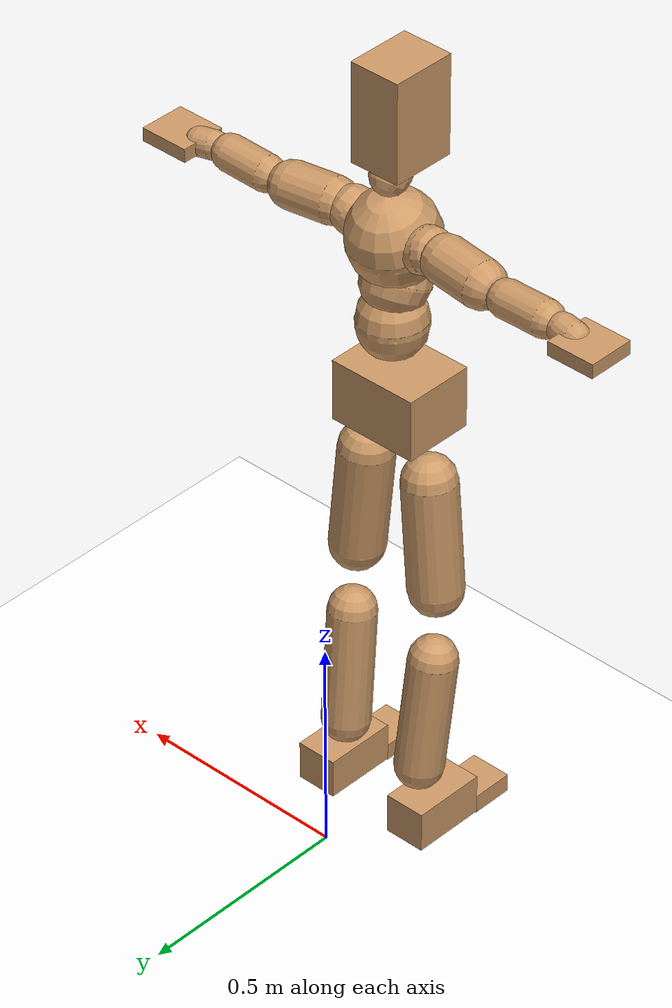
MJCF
<mujoco model="humanoid">
  <option integrator="implicitfast" />

  <visual>
    <global offwidth="1280" offheight="960" />
    <headlight active="1" ambient="0.34 0.34 0.34" diffuse="0.5 0.5 0.5" />
  </visual>

  <default>
    <joint damping="2" stiffness="2" armature="0.01" limited="true" solimplimit="0 .99 .01" />
    <geom condim="1" friction="0.7 0.005 0.0001" solimp=".99 .99 .003" solref="0.015 1" margin="0.001" rgba="0.8 0.6 .4 1" />
    <default class="smplcontact">
      <geom condim="3" friction="1. 0.005 0.0001" solref="0.015 1" solimp="0.98 0.98 0.001" priority="1" />
    </default>
    <default class="stiff_medium">
      <joint stiffness="10" />
    </default>
    <default class="stiff_medium_higher">
      <joint stiffness="50" />
    </default>
    <default class="stiff_high">
      <joint stiffness="100" />
    </default>
  </default>

  <asset>
    <texture type="skybox" builtin="gradient" rgb1="0.99 0.99 0.99" rgb2="0.608 0.828 0.892" width="100" />
    <texture builtin="flat" height="1278" mark="cross" markrgb="1 1 1" name="texgeom" random="0.01" rgb1="0.8 0.6 0.4" rgb2="0.8 0.6 0.4" type="cube" width="127" />
    <texture name="texplane" type="2d" builtin="checker" markrgb="1 1 1" rgb1="0.756 0.772 0.76" rgb2="0.6 0.6 0.6" width="100" height="100" />
    <material name="MatPlane" reflectance="0.5" texture="texplane" texrepeat="1 1" texuniform="true" />
    <material name="geom" texture="texgeom" texuniform="true" />
  </asset>

  <worldbody>
    <light name="tracking_light" pos="0 0 7" dir="0 0 -1" directional="true" cutoff="100" exponent="1" diffuse="1 1 1" specular="0.1 0.1 0.1" mode="trackcom" />
    <camera name="back" pos="0 3 2.4" xyaxes="-1 0 0 0 -1 2" mode="trackcom" />
    <camera name="side" pos="-3 0 2.4" xyaxes="0 -1 0 1 0 2" mode="trackcom" />
    <camera name="front_side" pos="-2.8 -2.8 0.8" xyaxes="0.5 -0.5 0 0.1 0.1 1" mode="trackcom" />
    <geom condim="3" name="floor" pos="0 0 0" rgba="1 1 1 1" size="100 100 .2" type="plane" material="MatPlane" />
    <body name="Pelvis" pos="-0.0018 -0.2233 1.05109" euler="90 0 0">
      <site name="Pelvis" size="0.01" />
      <freejoint name="Pelvis" />
      <geom type="box" pos="-0.0000 -0.0121 -0.0055" size="0.1069 0.0722 0.083" quat="1.0000 0.0000 0.0000 0.0000" density="3165.830099" name="Pelvis" />
      <body name="L_Hip" pos="0.0781875 -0.102825 -0.00765">
        <joint name="L_Hip_x" type="hinge" pos="0 0 0" axis="1 0 0" stiffness="12.190417346938776" range="-160.0 22.92" class="stiff_medium" damping="19.23943835853268" armature="0.013495335550763796"/>
        <joint name="L_Hip_y" type="hinge" pos="0 0 0" axis="0 1 0" stiffness="12.1624156122449" range="-70.0 70.0" class="stiff_medium" damping="12.01348525591105" armature="0.011866378571103061"/>
        <joint name="L_Hip_z" type="hinge" pos="0 0 0" axis="0 0 1" stiffness="12.164813061224491" range="-28.65 90.0" class="stiff_medium" damping="12.81394800146982" armature="0.013497721876857558"/>
        <geom type="capsule" density="2040.816327" fromto="0.0077625 -0.084375 -0.0010125 0.030825 -0.337725 -0.00405" size="0.0615" name="L_Hip" />
        <body name="L_Knee" pos="0.0385875 -0.4221 -0.0050625">
          <joint name="L_Knee_x" type="hinge" pos="0 0 0" axis="1 0 0" range="-5.16 171.89" damping="10.076823862713265" armature="0.013188848617403135" stiffness="2.4059714693877554"/>
          <joint name="L_Knee_y" type="hinge" pos="0 0 0" axis="0 1 0" range="-4.58 6.88" damping="9.48610001940017" armature="0.011596019506642572" stiffness="2.4250264693877552"/>
          <joint name="L_Knee_z" type="hinge" pos="0 0 0" axis="0 0 1" range="-6.88 4.58" damping="10.063496829521757" armature="0.013200099383969124" stiffness="2.3975664285714284"/>
          <geom type="capsule" density="1234.567901" fromto="-0.0030375 -0.08955 -0.0097875 -0.0122625 -0.3582 -0.039375" size="0.0541" name="L_Knee" />
          <body name="L_Ankle" pos="-0.0153 -0.44775 -0.0491625">
            <joint name="L_Ankle_x" type="hinge" pos="0 0 0" axis="1 0 0" range="-45.84 45.84" class="stiff_medium" damping="6.897532818423139" armature="0.011747130867095392" stiffness="11.250018673469388"/>
            <joint name="L_Ankle_y" type="hinge" pos="0 0 0" axis="0 1 0" range="-74.48 22.92" class="stiff_medium" damping="3.4392113884775433" armature="0.011682135831686723" stiffness="11.250011836734695"/>
            <joint name="L_Ankle_z" type="hinge" pos="0 0 0" axis="0 0 1" range="-4.58 4.58" class="stiff_medium" damping="6.751978545825464" armature="0.011256596119330211" stiffness="11.25"/>
            <geom type="box" pos="0.0262125 -0.0268875 0.027225" size="0.0483 0.0464 0.085" quat="1.0000 0.0000 0.0000 0.0000" density="449.071558" name="L_Ankle" class="smplcontact" />
            <body name="L_Toe" pos="0.0297 -0.062775 0.134213">
              <joint name="L_Toe_x" type="hinge" pos="0 0 0" axis="1 0 0" range="-91.67 22.92" armature="0.011009874139729963" damping="2.2258578936846987" stiffness="2.25"/>
              <joint name="L_Toe_y" type="hinge" pos="0 0 0" axis="0 1 0" range="-4.58 4.58" armature="0.010711537859158168" damping="2.195493574716441" stiffness="2.25"/>
              <joint name="L_Toe_z" type="hinge" pos="0 0 0" axis="0 0 1" range="-4.58 4.58" armature="0.010108317957717756" damping="2.132778254055726" stiffness="2.25"/>
              <geom type="box" pos="-0.003375 0.0061875 0.0279" size="0.0478 0.02 0.0496" quat="1.0000 0.0000 0.0000 0.0000" density="423.206892" name="L_Toe" class="smplcontact" />
            </body>
          </body>
        </body>
      </body>
      <body name="R_Hip" pos="-0.0761625 -0.101813 -0.0048375">
        <joint name="R_Hip_x" type="hinge" pos="0 0 0" axis="1 0 0" stiffness="12.190417346938776" range="-160.0 22.92" class="stiff_medium" damping="19.23943835853268" armature="0.013495335550763796"/>
        <joint name="R_Hip_y" type="hinge" pos="0 0 0" axis="0 1 0" stiffness="12.1624156122449" range="-70.0 70.0" class="stiff_medium" damping="12.01348525591105" armature="0.011866378571103061"/>
        <joint name="R_Hip_z" type="hinge" pos="0 0 0" axis="0 0 1" stiffness="12.164813061224491" range="-90.0 28.65" class="stiff_medium" damping="12.81394800146982" armature="0.013497721876857558"/>
        <geom type="capsule" density="2040.816327" fromto="-0.0086625 -0.0860625 -0.002025 -0.034425 -0.344362 -0.0079875" size="0.0606" name="R_Hip" />
        <body name="R_Knee" pos="-0.0430875 -0.430425 -0.0100125">
          <joint name="R_Knee_x" type="hinge" pos="0 0 0" axis="1 0 0" range="-5.16 171.89" damping="10.076823862713265" armature="0.013188848617403135" stiffness="2.4059714693877554"/>
          <joint name="R_Knee_y" type="hinge" pos="0 0 0" axis="0 1 0" range="-6.88 4.58" damping="9.48610001940017" armature="0.011596019506642572" stiffness="2.4250264693877552"/>
          <joint name="R_Knee_z" type="hinge" pos="0 0 0" axis="0 0 1" range="-4.58 6.88" damping="10.063496829521757" armature="0.013200099383969124" stiffness="2.3975664285714284"/>
          <geom type="capsule" density="1234.567901" fromto="0.0036 -0.0896625 -0.0095625 0.014175 -0.358537 -0.038025" size="0.0541" name="R_Knee" />
          <body name="R_Ankle" pos="0.017775 -0.4482 -0.0475875">
            <joint name="R_Ankle_x" type="hinge" pos="0 0 0" axis="1 0 0" range="-45.84 45.84" class="stiff_medium" damping="6.897532818423139" armature="0.011747130867095392" stiffness="11.250018673469388"/>
            <joint name="R_Ankle_y" type="hinge" pos="0 0 0" axis="0 1 0" range="-22.92 74.48" class="stiff_medium" damping="3.4392113884775433" armature="0.011682135831686723" stiffness="11.250011836734695"/>
            <joint name="R_Ankle_z" type="hinge" pos="0 0 0" axis="0 0 1" range="-4.58 4.58" class="stiff_medium" damping="6.751978545825464" armature="0.011256596119330211" stiffness="11.25"/>
            <geom type="box" pos="-0.02385 -0.019575 0.0288" size="0.0483 0.0478 0.0865" quat="1.0000 0.0000 0.0000 0.0000" density="434.700981" name="R_Ankle" class="smplcontact" />
            <body name="R_Toe" pos="-0.028575 -0.0541125 0.138713">
              <joint name="R_Toe_x" type="hinge" pos="0 0 0" axis="1 0 0" range="-91.67 22.92" armature="0.011009874139729963" damping="2.2258578936846987" stiffness="2.25"/>
              <joint name="R_Toe_y" type="hinge" pos="0 0 0" axis="0 1 0" range="-4.58 4.58" armature="0.010711537859158168" damping="2.195493574716441" stiffness="2.25"/>
              <joint name="R_Toe_z" type="hinge" pos="0 0 0" axis="0 0 1" range="-4.58 4.58" armature="0.010108317957717756" damping="2.132778254055726" stiffness="2.25"/>
              <geom type="box" pos="0.004725 0.0050625 0.0255375" size="0.0479 0.0216 0.0493" quat="1.0000 0.0000 0.0000 0.0000" density="407.384095" name="R_Toe" class="smplcontact" />
            </body>
          </body>
        </body>
      </body>
      <body name="Torso" pos="-0.0025 0.109 -0.0267">
        <joint name="Torso_x" type="hinge" pos="0 0 0" axis="1 0 0" range="-25.78 57.3" class="stiff_medium" damping="13.296564125699907" armature="0.008717287887859693" stiffness="9.01394612244898"/>
        <joint name="Torso_y" type="hinge" pos="0 0 0" axis="0 1 0" range="-57.3 57.3" class="stiff_high" damping="11.857975578739207" armature="0.0038447211811141577" stiffness="91.43158775510203"/>
        <joint name="Torso_z" type="hinge" pos="0 0 0" axis="0 0 1" range="-34.38 34.38" class="stiff_high" damping="16.193220219297853" armature="0.007045583299802339" stiffness="93.0442413043478"/>
        <geom type="capsule" density="2040.816327" fromto="0.0025 0.0608 0.0005 0.003 0.0743 0.0006" size="0.0769" name="Torso" />
        <body name="Spine" pos="0.0055 0.1352 0.0011">
          <joint name="Spine_x" type="hinge" pos="0 0 0" axis="1 0 0" stiffness="8.855082083333333" range="-25.78 57.3" class="stiff_medium" damping="13.07679767745398" armature="0.0085827744458704"/>
          <joint name="Spine_y" type="hinge" pos="0 0 0" axis="0 1 0" stiffness="8.966550425531915" range="-57.3 57.3" class="stiff_high" damping="4.670538649446806" armature="0.003801268715520681"/>
          <joint name="Spine_z" type="hinge" pos="0 0 0" axis="0 0 1" stiffness="17.399179999999998" range="-34.38 34.38" class="stiff_high" damping="8.612389288095052" armature="0.005920876830729188"/>
          <geom type="capsule" density="2040.816327" fromto="0.0007 0.0238 0.0114 0.0008 0.0291 0.014" size="0.0755" name="Spine" />
          <body name="Chest" pos="0.0015 0.0529 0.0254">
            <joint name="Chest_x" type="hinge" pos="0 0 0" axis="1 0 0" stiffness="8.445605217391304" range="-25.78 57.3" class="stiff_medium" damping="12.725283601187998" armature="0.008521609816255408"/>
            <joint name="Chest_y" type="hinge" pos="0 0 0" axis="0 1 0" stiffness="7.416513142857141" range="-57.3 57.3" class="stiff_high" damping="4.235867490218071" armature="0.003780114777548562"/>
            <joint name="Chest_z" type="hinge" pos="0 0 0" axis="0 0 1" stiffness="17.461715111111108" range="-34.38 34.38" class="stiff_high" damping="8.265316118618486" armature="0.005433748608980235"/>
            <geom type="capsule" density="2040.816327" fromto="-0.0009 0.0682 -0.0173 -0.001 0.0833 -0.0212" size="0.1002" name="Chest" />
            <body name="Neck" pos="-0.0028 0.2139 -0.0429">
              <joint name="Neck_x" type="hinge" pos="0 0 0" axis="1 0 0" range="-28.65 57.3" class="stiff_medium_higher" damping="10.000000000000004" armature="0.010000000000000009" stiffness="50.0"/>
              <joint name="Neck_y" type="hinge" pos="0 0 0" axis="0 1 0" range="-40.11 40.11" class="stiff_medium_higher" damping="10.0" armature="0.01" stiffness="50.0"/>
              <joint name="Neck_z" type="hinge" pos="0 0 0" axis="0 0 1" range="-40.11 40.11" class="stiff_medium_higher" damping="9.999999999999996" armature="0.009999999999999992" stiffness="50.0"/>
              <geom type="capsule" density="1000" fromto="0.001 0.013 0.0103 0.0041 0.052 0.0411" size="0.0436" name="Neck" />
              <body name="Head" pos="0.0052 0.065 0.0513">
                <joint name="Head_x" type="hinge" pos="0 0 0" axis="1 0 0" range="-28.65 57.3" class="stiff_medium_higher" damping="1.9999999999999978" armature="0.009999999999999978" stiffness="50.0"/>
                <joint name="Head_y" type="hinge" pos="0 0 0" axis="0 1 0" range="-40.11 40.11" class="stiff_medium_higher" damping="1.9999999999999998" armature="0.009999999999999998" stiffness="50.0"/>
                <joint name="Head_z" type="hinge" pos="0 0 0" axis="0 0 1" range="-40.11 40.11" class="stiff_medium_higher" damping="1.9999999999999944" armature="0.009999999999999945" stiffness="50.0"/>
                <geom type="box" pos="-0.0042 0.0876 -0.0116" size="0.0606 0.1154 0.076" quat="1.0000 0.0000 0.0000 0.0000" density="1018.069894" name="Head" />
                <geom type="capsule" name="nose" size="0.02 0.01" pos="0 0.07 0.05" quat="1 0 0 0" mass="0" contype="0" conaffinity="0" />
              </body>
            </body>
            <body name="L_Thorax" pos="0.052205 0.0806262 -0.0225912">
              <joint name="L_Thorax_x" type="hinge" pos="0 0 0" axis="1 0 0" range="-10.89 4.58" class="stiff_medium_higher" damping="10.752161019344744" armature="0.005492534491244063" stiffness="26.310478061224497"/>
              <joint name="L_Thorax_y" type="hinge" pos="0 0 0" axis="0 1 0" range="-28.65 17.19" class="stiff_medium_higher" damping="8.656507675839674" armature="0.0035990909186137967" stiffness="26.025712755102038"/>
              <joint name="L_Thorax_z" type="hinge" pos="0 0 0" axis="0 0 1" range="-31.51 40.11" class="stiff_medium_higher" damping="8.654936190408646" armature="0.0035973494554525564" stiffness="26.02885867346939"/>
              <geom type="capsule" density="1000" fromto="0.0120575 0.00404125 -0.0011925 0.04823 0.016165 -0.00470375" size="0.0521" name="L_Thorax" />
              <body name="L_Shoulder" pos="0.0602875 0.0202062 -0.00589625">
                <joint name="L_Shoulder_x" type="hinge" pos="0 0 0" axis="1 0 0" range="-97.4 97.4" class="stiff_medium" damping="3.435570611371455" armature="0.00618147417805879" stiffness="5.3039961224489796"/>
                <joint name="L_Shoulder_y" type="hinge" pos="0 0 0" axis="0 1 0" range="-108.86 80.21" class="stiff_medium" damping="2.6194672785690365" armature="0.003646930251057189" stiffness="5.226319999999999"/>
                <joint name="L_Shoulder_z" type="hinge" pos="0 0 0" axis="0 0 1" range="-97.4 85.94" class="stiff_medium" damping="2.619734916927622" armature="0.0036444798930498424" stiffness="5.230902653061225"/>
                <geom type="capsule" density="1000" fromto="0.0343837 -0.0017225 -0.00364375 0.137601 -0.0067575 -0.014575" size="0.0517" name="L_Shoulder" />
                <body name="L_Elbow" pos="0.171985 -0.00848 -0.0182187">
                  <joint name="L_Elbow_x" type="hinge" pos="0 0 0" axis="1 0 0" range="-17.19 4.58" damping="3.178557774354656" armature="0.007393662378868602" stiffness="1.0931772653061227"/>
                  <joint name="L_Elbow_y" type="hinge" pos="0 0 0" axis="0 1 0" range="-180.0 17.19" damping="2.3033030607353284" armature="0.003885042260915374" stiffness="1.0924370204081633"/>
                  <joint name="L_Elbow_z" type="hinge" pos="0 0 0" axis="0 0 1" range="-100.84 4.58" damping="2.3008114328593727" armature="0.0038721783452337188" stiffness="1.0936961632653062"/>
                  <geom type="capsule" density="1000" fromto="0.0329925 0.0011925 -0.0001325 0.132102 0.00477 -0.00059625" size="0.0405" name="L_Elbow" />
                  <body name="L_Wrist" pos="0.165095 0.0059625 -0.000795">
                    <joint name="L_Wrist_x" type="hinge" pos="0 0 0" axis="1 0 0" range="-180.0 22.92" armature="0.008001427855743062" damping="1.4109622696559905" stiffness="1.2440370408163264"/>
                    <joint name="L_Wrist_y" type="hinge" pos="0 0 0" axis="0 1 0" range="-17.19 17.19" armature="0.004879471429003486" damping="1.0965644446974538" stiffness="1.2321555714285712"/>
                    <joint name="L_Wrist_z" type="hinge" pos="0 0 0" axis="0 0 1" range="-22.92 22.92" armature="0.004698864868438899" damping="1.0781698402208952" stiffness="1.2369478979591837"/>
                    <geom type="capsule" density="1000" fromto="0.01113 -0.00106 -0.0019875 0.04452 -0.00430625 -0.00795" size="0.0318" name="L_Wrist" class="smplcontact" />
                    <body name="L_Hand" pos="0.05565 -0.0054325 -0.00987125">
                      <joint name="L_Hand_x" type="hinge" pos="0 0 0" axis="1 0 0" range="-17.19 17.19" armature="0.009755552996204358" damping="1.6078618449168156" stiffness="1.3249990612244895"/>
                      <joint name="L_Hand_y" type="hinge" pos="0 0 0" axis="0 1 0" range="-51.57 51.57" armature="0.00704374716628599" damping="1.3662326477640367" stiffness="1.3249990408163264"/>
                      <joint name="L_Hand_z" type="hinge" pos="0 0 0" axis="0 0 1" range="-91.67 91.67" armature="0.006320878329522859" damping="1.2942300773617847" stiffness="1.3249989999999998"/>
                      <geom type="box" pos="0.0326612 0.0006625 -0.0038425" size="0.0585 0.0158 0.0538" quat="1.0000 0.0000 0.0000 0.0000" density="400.552564" name="L_Hand" class="smplcontact" />
                    </body>
                  </body>
                </body>
              </body>
            </body>
            <body name="R_Thorax" pos="-0.0541925 0.078705 -0.0255725">
              <joint name="R_Thorax_x" type="hinge" pos="0 0 0" axis="1 0 0" range="-10.89 4.58" class="stiff_medium_higher" damping="10.752161019344744" armature="0.005492534491244063" stiffness="26.310478061224497"/>
              <joint name="R_Thorax_y" type="hinge" pos="0 0 0" axis="0 1 0" range="-17.19 28.65" class="stiff_medium_higher" damping="8.656507675839674" armature="0.0035990909186137967" stiffness="26.025712755102038"/>
              <joint name="R_Thorax_z" type="hinge" pos="0 0 0" axis="0 0 1" range="-40.11 31.51" class="stiff_medium_higher" damping="8.654936190408646" armature="0.0035973494554525564" stiffness="26.02885867346939"/>
              <geom type="capsule" density="1000" fromto="-0.01272 0.00430625 -0.0011925 -0.05088 0.017225 -0.00483625" size="0.0511" name="R_Thorax" />
              <body name="R_Shoulder" pos="-0.0636 0.0215975 -0.00602875">
                <joint name="R_Shoulder_x" type="hinge" pos="0 0 0" axis="1 0 0" range="-97.4 97.4" class="stiff_medium" damping="3.435570611371455" armature="0.00618147417805879" stiffness="5.3039961224489796"/>
                <joint name="R_Shoulder_y" type="hinge" pos="0 0 0" axis="0 1 0" range="-80.21 108.86" class="stiff_medium" damping="2.6194672785690365" armature="0.003646930251057189" stiffness="5.226319999999999"/>
                <joint name="R_Shoulder_z" type="hinge" pos="0 0 0" axis="0 0 1" range="-85.94 97.4" class="stiff_medium" damping="2.619734916927622" armature="0.0036444798930498424" stiffness="5.230902653061225"/>
                <geom type="capsule" density="1000" fromto="-0.0335888 -0.00178875 -0.00284875 -0.134488 -0.00708875 -0.0113288" size="0.0531" name="R_Shoulder" />
                <body name="R_Elbow" pos="-0.168076 -0.00881125 -0.0141775">
                  <joint name="R_Elbow_x" type="hinge" pos="0 0 0" axis="1 0 0" range="-17.19 4.58" damping="3.178557774354656" armature="0.007393662378868602" stiffness="1.0931772653061227"/>
                  <joint name="R_Elbow_y" type="hinge" pos="0 0 0" axis="0 1 0" range="-17.19 180.0" damping="2.3033030607353284" armature="0.003885042260915374" stiffness="1.0924370204081633"/>
                  <joint name="R_Elbow_z" type="hinge" pos="0 0 0" axis="0 0 1" range="-4.58 100.84" damping="2.3008114328593727" armature="0.0038721783452337188" stiffness="1.0936961632653062"/>
                  <geom type="capsule" density="1000" fromto="-0.0338538 0.00106 -0.00072875 -0.135282 0.0041075 -0.002915" size="0.0408" name="R_Elbow" />
                  <body name="R_Wrist" pos="-0.169136 0.0051675 -0.00371">
                    <joint name="R_Wrist_x" type="hinge" pos="0 0 0" axis="1 0 0" range="-180.0 22.92" armature="0.008001427855743062" damping="1.4109622696559905" stiffness="1.2440370408163264"/>
                    <joint name="R_Wrist_y" type="hinge" pos="0 0 0" axis="0 1 0" range="-17.19 17.19" armature="0.004879471429003486" damping="1.0965644446974538" stiffness="1.2321555714285712"/>
                    <joint name="R_Wrist_z" type="hinge" pos="0 0 0" axis="0 0 1" range="-22.92 22.92" armature="0.004698864868438899" damping="1.0781698402208952" stiffness="1.2369478979591837"/>
                    <geom type="capsule" density="1000" fromto="-0.0111962 -0.000795 -0.00139125 -0.0448512 -0.00324625 -0.00549875" size="0.0326" name="R_Wrist" class="smplcontact" />
                    <body name="R_Hand" pos="-0.0560475 -0.00404125 -0.00682375">
                      <joint name="R_Hand_x" type="hinge" pos="0 0 0" axis="1 0 0" range="-17.19 17.19" armature="0.009755552996204358" damping="1.6078618449168156" stiffness="1.3249990612244895"/>
                      <joint name="R_Hand_y" type="hinge" pos="0 0 0" axis="0 1 0" range="-51.57 51.57" armature="0.00704374716628599" damping="1.3662326477640367" stiffness="1.3249990408163264"/>
                      <joint name="R_Hand_z" type="hinge" pos="0 0 0" axis="0 0 1" range="-91.67 91.67" armature="0.006320878329522859" damping="1.2942300773617847" stiffness="1.3249989999999998"/>
                      <geom type="box" pos="-0.0306075 -0.00059625 -0.00523375" size="0.0569 0.0164 0.0546" quat="1.0000 0.0000 0.0000 0.0000" density="403.679611" name="R_Hand" class="smplcontact" />
                    </body>
                  </body>
                </body>
              </body>
            </body>
          </body>
        </body>
      </body>
    </body>
  </worldbody>
  <actuator>
    <general name="L_Hip_x" joint="L_Hip_x" biastype="affine" gainprm="350.267339766903" biasprm="-262.4898695344799 -219.42751224489797 -2.5652584478043576" ctrllimited="true" ctrlrange="-1 1" forcerange="-438.85502448979594 438.85502448979594" />
    <general name="L_Hip_y" joint="L_Hip_y" biastype="affine" gainprm="267.4654887613407" biasprm="0.0 -218.9234810204082 -2.40269705118221" ctrllimited="true" ctrlrange="-1 1" forcerange="-437.8469620408164 437.8469620408164" />
    <general name="L_Hip_z" joint="L_Hip_z" biastype="affine" gainprm="226.72168417679922" biasprm="117.23030193212499 -218.96663510204084 -2.562789600293964" ctrllimited="true" ctrlrange="-1 1" forcerange="-437.9332702040817 437.9332702040817" />
    <general name="L_Knee_x" joint="L_Knee_x" biastype="affine" gainprm="334.5617487428154" biasprm="315.0606064269393 -216.53743224489799 -2.5192059656783163" ctrllimited="true" ctrlrange="-1 1" forcerange="-433.07486448979597 433.07486448979597" />
    <general name="L_Knee_y" joint="L_Knee_y" biastype="affine" gainprm="21.82684590193453" biasprm="4.380606071068885 -218.25238224489797 -2.3715250048500427" ctrllimited="true" ctrlrange="-1 1" forcerange="-436.50476448979595 436.50476448979595" />
    <general name="L_Knee_z" joint="L_Knee_z" biastype="affine" gainprm="21.579687329883924" biasprm="-4.331001820133772 -215.78097857142856 -2.515874207380439" ctrllimited="true" ctrlrange="-1 1" forcerange="-431.5619571428571 431.5619571428571" />
    <general name="L_Ankle_x" joint="L_Ankle_x" biastype="affine" gainprm="81.00610103169612" biasprm="0.0 -101.2501680612245 -2.2991776061410465" ctrllimited="true" ctrlrange="-1 1" forcerange="-202.500336122449 202.500336122449" />
    <general name="L_Ankle_y" joint="L_Ankle_y" biastype="affine" gainprm="86.06009430266938" biasprm="-45.557068400879196 -101.25010653061226 -2.292807592318362" ctrllimited="true" ctrlrange="-1 1" forcerange="-202.5002130612245 202.5002130612245" />
    <general name="L_Ankle_z" joint="L_Ankle_z" biastype="affine" gainprm="8.093528073810704" biasprm="0.0 -101.25 -2.2506595152751547" ctrllimited="true" ctrlrange="-1 1" forcerange="-202.5 202.5" />
    <general name="L_Toe_x" joint="L_Toe_x" biastype="affine" gainprm="80.99889798934223" biasprm="-48.59651136021711 -81.0 -0.8903431574738795" ctrllimited="true" ctrlrange="-1 1" forcerange="-162.0 162.0" />
    <general name="L_Toe_y" joint="L_Toe_y" biastype="affine" gainprm="6.474822459048563" biasprm="0.0 -81.0 -0.8781974298865765" ctrllimited="true" ctrlrange="-1 1" forcerange="-162.0 162.0" />
    <general name="L_Toe_z" joint="L_Toe_z" biastype="affine" gainprm="6.474822459048563" biasprm="0.0 -81.0 -0.8531113016222904" ctrllimited="true" ctrlrange="-1 1" forcerange="-162.0 162.0" />
    <general name="R_Hip_x" joint="R_Hip_x" biastype="affine" gainprm="350.267339766903" biasprm="-262.4898695344799 -219.42751224489797 -2.5652584478043576" ctrllimited="true" ctrlrange="-1 1" forcerange="-438.85502448979594 438.85502448979594" />
    <general name="R_Hip_y" joint="R_Hip_y" biastype="affine" gainprm="267.4654887613407" biasprm="0.0 -218.9234810204082 -2.40269705118221" ctrllimited="true" ctrlrange="-1 1" forcerange="-437.8469620408164 437.8469620408164" />
    <general name="R_Hip_z" joint="R_Hip_z" biastype="affine" gainprm="226.72168417679922" biasprm="-117.23030193212499 -218.96663510204084 -2.562789600293964" ctrllimited="true" ctrlrange="-1 1" forcerange="-437.9332702040817 437.9332702040817" />
    <general name="R_Knee_x" joint="R_Knee_x" biastype="affine" gainprm="334.5617487428154" biasprm="315.0606064269393 -216.53743224489799 -2.5192059656783163" ctrllimited="true" ctrlrange="-1 1" forcerange="-433.07486448979597 433.07486448979597" />
    <general name="R_Knee_y" joint="R_Knee_y" biastype="affine" gainprm="21.82684590193453" biasprm="-4.380606071068885 -218.25238224489797 -2.3715250048500427" ctrllimited="true" ctrlrange="-1 1" forcerange="-436.50476448979595 436.50476448979595" />
    <general name="R_Knee_z" joint="R_Knee_z" biastype="affine" gainprm="21.579687329883924" biasprm="4.331001820133772 -215.78097857142856 -2.515874207380439" ctrllimited="true" ctrlrange="-1 1" forcerange="-431.5619571428571 431.5619571428571" />
    <general name="R_Ankle_x" joint="R_Ankle_x" biastype="affine" gainprm="81.00610103169612" biasprm="0.0 -101.2501680612245 -2.2991776061410465" ctrllimited="true" ctrlrange="-1 1" forcerange="-202.500336122449 202.500336122449" />
    <general name="R_Ankle_y" joint="R_Ankle_y" biastype="affine" gainprm="86.06009430266938" biasprm="45.557068400879196 -101.25010653061226 -2.292807592318362" ctrllimited="true" ctrlrange="-1 1" forcerange="-202.5002130612245 202.5002130612245" />
    <general name="R_Ankle_z" joint="R_Ankle_z" biastype="affine" gainprm="8.093528073810704" biasprm="0.0 -101.25 -2.2506595152751547" ctrllimited="true" ctrlrange="-1 1" forcerange="-202.5 202.5" />
    <general name="R_Toe_x" joint="R_Toe_x" biastype="affine" gainprm="80.99889798934223" biasprm="-48.59651136021711 -81.0 -0.8903431574738795" ctrllimited="true" ctrlrange="-1 1" forcerange="-162.0 162.0" />
    <general name="R_Toe_y" joint="R_Toe_y" biastype="affine" gainprm="6.474822459048563" biasprm="0.0 -81.0 -0.8781974298865765" ctrllimited="true" ctrlrange="-1 1" forcerange="-162.0 162.0" />
    <general name="R_Toe_z" joint="R_Toe_z" biastype="affine" gainprm="6.474822459048563" biasprm="0.0 -81.0 -0.8531113016222904" ctrllimited="true" ctrlrange="-1 1" forcerange="-162.0 162.0" />
    <general name="Torso_x" joint="Torso_x" biastype="affine" gainprm="156.84477639727098" biasprm="59.505866057318 -216.33470693877553 -3.5457504335199754" ctrllimited="true" ctrlrange="-1 1" forcerange="-324.5020604081633 324.5020604081633" />
    <general name="Torso_y" joint="Torso_y" biastype="affine" gainprm="219.45197455967397" biasprm="0.0 -219.43581061224486 -2.3715951157478417" ctrllimited="true" ctrlrange="-1 1" forcerange="-329.1537159183673 329.1537159183673" />
    <general name="Torso_z" joint="Torso_z" biastype="affine" gainprm="133.99357690475964" biasprm="0.0 -223.30617913043474 -3.2386440438595705" ctrllimited="true" ctrlrange="-1 1" forcerange="-334.9592686956521 334.9592686956521" />
    <general name="Spine_x" joint="Spine_x" biastype="affine" gainprm="154.08050486134445" biasprm="58.457119802955894 -212.52197 -3.4871460473210614" ctrllimited="true" ctrlrange="-1 1" forcerange="-318.782955 318.782955" />
    <general name="Spine_y" joint="Spine_y" biastype="affine" gainprm="215.21306193898633" biasprm="0.0 -215.19721021276595 -2.335269324723403" ctrllimited="true" ctrlrange="-1 1" forcerange="-322.7958153191489 322.7958153191489" />
    <general name="Spine_z" joint="Spine_z" biastype="affine" gainprm="125.28332386438697" biasprm="0.0 -208.79016 -2.870796429365017" ctrllimited="true" ctrlrange="-1 1" forcerange="-313.18523999999996 313.18523999999996" />
    <general name="Chest_x" joint="Chest_x" biastype="affine" gainprm="146.95551136725376" biasprm="55.753944611168 -202.69452521739132 -3.3934089603167994" ctrllimited="true" ctrlrange="-1 1" forcerange="-304.04178782608693 304.04178782608693" />
    <general name="Chest_y" joint="Chest_y" biastype="affine" gainprm="178.00942688507038" biasprm="0.0 -177.9963154285714 -2.1179337451090356" ctrllimited="true" ctrlrange="-1 1" forcerange="-266.9944731428571 266.9944731428571" />
    <general name="Chest_z" joint="Chest_z" biastype="affine" gainprm="125.7336098306353" biasprm="0.0 -209.5405813333333 -2.755105372872829" ctrllimited="true" ctrlrange="-1 1" forcerange="-314.31087199999996 314.31087199999996" />
    <general name="Neck_x" joint="Neck_x" biastype="affine" gainprm="27.00198885760427" biasprm="9.000662952534757 -36.0 -0.8000000000000004" ctrllimited="true" ctrlrange="-1 1" forcerange="-72.0 72.0" />
    <general name="Neck_y" joint="Neck_y" biastype="affine" gainprm="25.20185626709732" biasprm="0.0 -36.0 -0.8" ctrllimited="true" ctrlrange="-1 1" forcerange="-72.0 72.0" />
    <general name="Neck_z" joint="Neck_z" biastype="affine" gainprm="25.20185626709732" biasprm="0.0 -36.0 -0.7999999999999997" ctrllimited="true" ctrlrange="-1 1" forcerange="-72.0 72.0" />
    <general name="Head_x" joint="Head_x" biastype="affine" gainprm="18.001325905069514" biasprm="6.000441968356505 -24.0 -0.7999999999999992" ctrllimited="true" ctrlrange="-1 1" forcerange="-48.0 48.0" />
    <general name="Head_y" joint="Head_y" biastype="affine" gainprm="16.801237511398213" biasprm="0.0 -24.0 -0.7999999999999999" ctrllimited="true" ctrlrange="-1 1" forcerange="-48.0 48.0" />
    <general name="Head_z" joint="Head_z" biastype="affine" gainprm="16.801237511398213" biasprm="0.0 -24.0 -0.7999999999999978" ctrllimited="true" ctrlrange="-1 1" forcerange="-48.0 48.0" />
    <general name="L_Thorax_x" joint="L_Thorax_x" biastype="affine" gainprm="8.524671780005175" biasprm="-3.4770962464015946 -63.14514734693879 -0.8601728815475795" ctrllimited="true" ctrlrange="-1 1" forcerange="-126.29029469387758 126.29029469387758" />
    <general name="L_Thorax_y" joint="L_Thorax_y" biastype="affine" gainprm="24.98652465153687" biasprm="-6.246631162884218 -62.461710612244886 -0.692520614067174" ctrllimited="true" ctrlrange="-1 1" forcerange="-124.92342122448977 124.92342122448977" />
    <general name="L_Thorax_z" joint="L_Thorax_z" biastype="affine" gainprm="39.04343825747016" biasprm="4.688265414887508 -62.46926081632654 -0.6923948952326917" ctrllimited="true" ctrlrange="-1 1" forcerange="-124.93852163265308 124.93852163265308" />
    <general name="L_Shoulder_x" joint="L_Shoulder_x" biastype="affine" gainprm="43.279353003673734" biasprm="0.0 -25.459181387755102 -0.9161521630323881" ctrllimited="true" ctrlrange="-1 1" forcerange="-50.918362775510204 50.918362775510204" />
    <general name="L_Shoulder_y" joint="L_Shoulder_y" biastype="affine" gainprm="41.39112503423586" biasprm="-6.272045973612193 -25.086336 -0.6985246076184097" ctrllimited="true" ctrlrange="-1 1" forcerange="-50.172672 50.172672" />
    <general name="L_Shoulder_z" joint="L_Shoulder_z" biastype="affine" gainprm="40.171909368365355" biasprm="-2.511018224945282 -25.108332734693878 -0.6985959778473659" ctrllimited="true" ctrlrange="-1 1" forcerange="-50.216665469387756 50.216665469387756" />
    <general name="L_Elbow_x" joint="L_Elbow_x" biastype="affine" gainprm="7.476509558353197" biasprm="-4.330674576519699 -39.35438155102042 -0.508569243896745" ctrllimited="true" ctrlrange="-1 1" forcerange="-78.70876310204083 78.70876310204083" />
    <general name="L_Elbow_y" joint="L_Elbow_y" biastype="affine" gainprm="67.67545257136767" biasprm="-55.87626367028943 -39.327732734693875 -0.36852848971765256" ctrllimited="true" ctrlrange="-1 1" forcerange="-78.65546546938775 78.65546546938775" />
    <general name="L_Elbow_z" joint="L_Elbow_z" biastype="affine" gainprm="36.22176204255759" biasprm="-33.07443382865295 -39.373061877551024 -0.3681298292574997" ctrllimited="true" ctrlrange="-1 1" forcerange="-78.74612375510205 78.74612375510205" />
    <general name="L_Wrist_x" joint="L_Wrist_x" biastype="affine" gainprm="13.217727298647333" biasprm="-10.231818470685607 -7.464222244897958 -0.5643849078623963" ctrllimited="true" ctrlrange="-1 1" forcerange="-14.928444489795917 14.928444489795917" />
    <general name="L_Wrist_y" joint="L_Wrist_y" biastype="affine" gainprm="2.2180434007032876" biasprm="0.0 -7.392933428571427 -0.43862577787898155" ctrllimited="true" ctrlrange="-1 1" forcerange="-14.785866857142855 14.785866857142855" />
    <general name="L_Wrist_z" joint="L_Wrist_z" biastype="affine" gainprm="2.9688936318338586" biasprm="0.0 -7.421687387755102 -0.4312679360883581" ctrllimited="true" ctrlrange="-1 1" forcerange="-14.843374775510204 14.843374775510204" />
    <general name="L_Hand_x" joint="L_Hand_x" biastype="affine" gainprm="2.38517399250132" biasprm="0.0 -7.949994367346937 -0.6431447379667263" ctrllimited="true" ctrlrange="-1 1" forcerange="-15.899988734693874 15.899988734693874" />
    <general name="L_Hand_y" joint="L_Hand_y" biastype="affine" gainprm="7.155521867291758" biasprm="0.0 -7.949994244897958 -0.5464930591056147" ctrllimited="true" ctrlrange="-1 1" forcerange="-15.899988489795916 15.899988489795916" />
    <general name="L_Hand_z" joint="L_Hand_z" biastype="affine" gainprm="12.7195398365005" biasprm="0.0 -7.9499939999999985 -0.5176920309447139" ctrllimited="true" ctrlrange="-1 1" forcerange="-15.899987999999997 15.899987999999997" />
    <general name="R_Thorax_x" joint="R_Thorax_x" biastype="affine" gainprm="8.524671780005175" biasprm="-3.4770962464015946 -63.14514734693879 -0.8601728815475795" ctrllimited="true" ctrlrange="-1 1" forcerange="-126.29029469387758 126.29029469387758" />
    <general name="R_Thorax_y" joint="R_Thorax_y" biastype="affine" gainprm="24.98652465153687" biasprm="6.246631162884214 -62.461710612244886 -0.692520614067174" ctrllimited="true" ctrlrange="-1 1" forcerange="-124.92342122448977 124.92342122448977" />
    <general name="R_Thorax_z" joint="R_Thorax_z" biastype="affine" gainprm="39.04343825747016" biasprm="-4.688265414887508 -62.46926081632654 -0.6923948952326917" ctrllimited="true" ctrlrange="-1 1" forcerange="-124.93852163265308 124.93852163265308" />
    <general name="R_Shoulder_x" joint="R_Shoulder_x" biastype="affine" gainprm="43.279353003673734" biasprm="0.0 -25.459181387755102 -0.9161521630323881" ctrllimited="true" ctrlrange="-1 1" forcerange="-50.918362775510204 50.918362775510204" />
    <general name="R_Shoulder_y" joint="R_Shoulder_y" biastype="affine" gainprm="41.39112503423586" biasprm="6.272045973612193 -25.086336 -0.6985246076184097" ctrllimited="true" ctrlrange="-1 1" forcerange="-50.172672 50.172672" />
    <general name="R_Shoulder_z" joint="R_Shoulder_z" biastype="affine" gainprm="40.171909368365355" biasprm="2.5110182249452766 -25.108332734693878 -0.6985959778473659" ctrllimited="true" ctrlrange="-1 1" forcerange="-50.216665469387756 50.216665469387756" />
    <general name="R_Elbow_x" joint="R_Elbow_x" biastype="affine" gainprm="7.476509558353197" biasprm="-4.330674576519699 -39.35438155102042 -0.508569243896745" ctrllimited="true" ctrlrange="-1 1" forcerange="-78.70876310204083 78.70876310204083" />
    <general name="R_Elbow_y" joint="R_Elbow_y" biastype="affine" gainprm="67.67545257136767" biasprm="55.87626367028943 -39.327732734693875 -0.36852848971765256" ctrllimited="true" ctrlrange="-1 1" forcerange="-78.65546546938775 78.65546546938775" />
    <general name="R_Elbow_z" joint="R_Elbow_z" biastype="affine" gainprm="36.22176204255759" biasprm="33.07443382865295 -39.373061877551024 -0.3681298292574997" ctrllimited="true" ctrlrange="-1 1" forcerange="-78.74612375510205 78.74612375510205" />
    <general name="R_Wrist_x" joint="R_Wrist_x" biastype="affine" gainprm="13.217727298647333" biasprm="-10.231818470685607 -7.464222244897958 -0.5643849078623963" ctrllimited="true" ctrlrange="-1 1" forcerange="-14.928444489795917 14.928444489795917" />
    <general name="R_Wrist_y" joint="R_Wrist_y" biastype="affine" gainprm="2.2180434007032876" biasprm="0.0 -7.392933428571427 -0.43862577787898155" ctrllimited="true" ctrlrange="-1 1" forcerange="-14.785866857142855 14.785866857142855" />
    <general name="R_Wrist_z" joint="R_Wrist_z" biastype="affine" gainprm="2.9688936318338586" biasprm="0.0 -7.421687387755102 -0.4312679360883581" ctrllimited="true" ctrlrange="-1 1" forcerange="-14.843374775510204 14.843374775510204" />
    <general name="R_Hand_x" joint="R_Hand_x" biastype="affine" gainprm="2.38517399250132" biasprm="0.0 -7.949994367346937 -0.6431447379667263" ctrllimited="true" ctrlrange="-1 1" forcerange="-15.899988734693874 15.899988734693874" />
    <general name="R_Hand_y" joint="R_Hand_y" biastype="affine" gainprm="7.155521867291758" biasprm="0.0 -7.949994244897958 -0.5464930591056147" ctrllimited="true" ctrlrange="-1 1" forcerange="-15.899988489795916 15.899988489795916" />
    <general name="R_Hand_z" joint="R_Hand_z" biastype="affine" gainprm="12.7195398365005" biasprm="0.0 -7.9499939999999985 -0.5176920309447139" ctrllimited="true" ctrlrange="-1 1" forcerange="-15.899987999999997 15.899987999999997" />
  </actuator>
  <contact>
    <exclude body1="Torso" body2="Chest" />
    <exclude body1="Head" body2="Chest" />
    <exclude body1="R_Knee" body2="R_Toe" />
    <exclude body1="R_Knee" body2="L_Ankle" />
    <exclude body1="R_Knee" body2="L_Toe" />
    <exclude body1="L_Knee" body2="L_Toe" />
    <exclude body1="L_Knee" body2="R_Ankle" />
    <exclude body1="L_Knee" body2="R_Toe" />
    <exclude body1="L_Shoulder" body2="Chest" />
    <exclude body1="R_Shoulder" body2="Chest" />
  </contact>
  <sensor>
    <framelinvel name="sensor_Pelvis_framelinvel" objtype="xbody" objname="Pelvis" />
    <framelinvel name="sensor_L_Hip_framelinvel" objtype="xbody" objname="L_Hip" />
    <framelinvel name="sensor_L_Knee_framelinvel" objtype="xbody" objname="L_Knee" />
    <framelinvel name="sensor_L_Ankle_framelinvel" objtype="xbody" objname="L_Ankle" />
    <framelinvel name="sensor_L_Toe_framelinvel" objtype="xbody" objname="L_Toe" />
    <framelinvel name="sensor_R_Hip_framelinvel" objtype="xbody" objname="R_Hip" />
    <framelinvel name="sensor_R_Knee_framelinvel" objtype="xbody" objname="R_Knee" />
    <framelinvel name="sensor_R_Ankle_framelinvel" objtype="xbody" objname="R_Ankle" />
    <framelinvel name="sensor_R_Toe_framelinvel" objtype="xbody" objname="R_Toe" />
    <framelinvel name="sensor_Torso_framelinvel" objtype="xbody" objname="Torso" />
    <framelinvel name="sensor_Spine_framelinvel" objtype="xbody" objname="Spine" />
    <framelinvel name="sensor_Chest_framelinvel" objtype="xbody" objname="Chest" />
    <framelinvel name="sensor_Neck_framelinvel" objtype="xbody" objname="Neck" />
    <framelinvel name="sensor_Head_framelinvel" objtype="xbody" objname="Head" />
    <framelinvel name="sensor_L_Thorax_framelinvel" objtype="xbody" objname="L_Thorax" />
    <framelinvel name="sensor_L_Shoulder_framelinvel" objtype="xbody" objname="L_Shoulder" />
    <framelinvel name="sensor_L_Elbow_framelinvel" objtype="xbody" objname="L_Elbow" />
    <framelinvel name="sensor_L_Wrist_framelinvel" objtype="xbody" objname="L_Wrist" />
    <framelinvel name="sensor_L_Hand_framelinvel" objtype="xbody" objname="L_Hand" />
    <framelinvel name="sensor_R_Thorax_framelinvel" objtype="xbody" objname="R_Thorax" />
    <framelinvel name="sensor_R_Shoulder_framelinvel" objtype="xbody" objname="R_Shoulder" />
    <framelinvel name="sensor_R_Elbow_framelinvel" objtype="xbody" objname="R_Elbow" />
    <framelinvel name="sensor_R_Wrist_framelinvel" objtype="xbody" objname="R_Wrist" />
    <framelinvel name="sensor_R_Hand_framelinvel" objtype="xbody" objname="R_Hand" />
    <frameangvel name="sensor_Pelvis_frameangvel" objtype="xbody" objname="Pelvis" />
    <frameangvel name="sensor_L_Hip_frameangvel" objtype="xbody" objname="L_Hip" />
    <frameangvel name="sensor_L_Knee_frameangvel" objtype="xbody" objname="L_Knee" />
    <frameangvel name="sensor_L_Ankle_frameangvel" objtype="xbody" objname="L_Ankle" />
    <frameangvel name="sensor_L_Toe_frameangvel" objtype="xbody" objname="L_Toe" />
    <frameangvel name="sensor_R_Hip_frameangvel" objtype="xbody" objname="R_Hip" />
    <frameangvel name="sensor_R_Knee_frameangvel" objtype="xbody" objname="R_Knee" />
    <frameangvel name="sensor_R_Ankle_frameangvel" objtype="xbody" objname="R_Ankle" />
    <frameangvel name="sensor_R_Toe_frameangvel" objtype="xbody" objname="R_Toe" />
    <frameangvel name="sensor_Torso_frameangvel" objtype="xbody" objname="Torso" />
    <frameangvel name="sensor_Spine_frameangvel" objtype="xbody" objname="Spine" />
    <frameangvel name="sensor_Chest_frameangvel" objtype="xbody" objname="Chest" />
    <frameangvel name="sensor_Neck_frameangvel" objtype="xbody" objname="Neck" />
    <frameangvel name="sensor_Head_frameangvel" objtype="xbody" objname="Head" />
    <frameangvel name="sensor_L_Thorax_frameangvel" objtype="xbody" objname="L_Thorax" />
    <frameangvel name="sensor_L_Shoulder_frameangvel" objtype="xbody" objname="L_Shoulder" />
    <frameangvel name="sensor_L_Elbow_frameangvel" objtype="xbody" objname="L_Elbow" />
    <frameangvel name="sensor_L_Wrist_frameangvel" objtype="xbody" objname="L_Wrist" />
    <frameangvel name="sensor_L_Hand_frameangvel" objtype="xbody" objname="L_Hand" />
    <frameangvel name="sensor_R_Thorax_frameangvel" objtype="xbody" objname="R_Thorax" />
    <frameangvel name="sensor_R_Shoulder_frameangvel" objtype="xbody" objname="R_Shoulder" />
    <frameangvel name="sensor_R_Elbow_frameangvel" objtype="xbody" objname="R_Elbow" />
    <frameangvel name="sensor_R_Wrist_frameangvel" objtype="xbody" objname="R_Wrist" />
    <frameangvel name="sensor_R_Hand_frameangvel" objtype="xbody" objname="R_Hand" />
    <subtreelinvel name="Chest_subtreelinvel" body="Chest" />
    <gyro name="Pelvis_gyro" site="Pelvis" />
  </sensor>
</mujoco>
